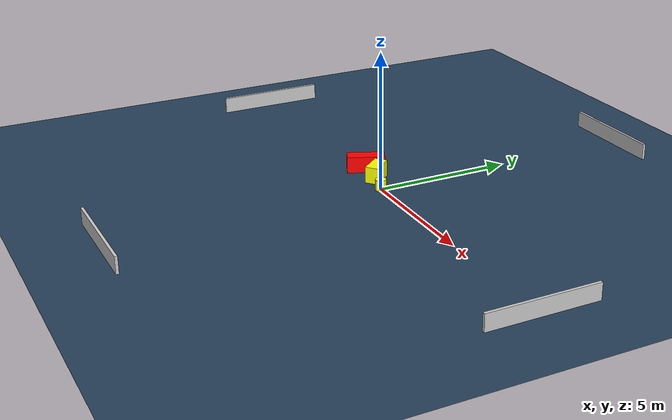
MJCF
<?xml version="1.0" ?>
<mujoco model="generated_environment">
  <option timestep="0.01" integrator="RK4" cone="elliptic"/>
  <default>
    <geom density="1"/>
  </default>
  <asset>
    <texture builtin="gradient" height="3072" name="skybox" rgb1="0.3 0.5 0.7" rgb2="0 0 0" type="skybox" width="512"/>
    <texture builtin="checker" height="300" name="groundplane" rgb1="0.2 0.3 0.4" rgb2="0.1 0.2 0.3" type="2d" width="300"/>
    <material name="groundplane" reflectance="0.2" texrepeat="5 5" texture="groundplane"/>
  </asset>
  <worldbody>
    <light dir="0 0 -1" directional="true" pos="0 0 1.5"/>
    <geom condim="3" friction="0.5 0.005 0.001" material="groundplane" name="floor" pos="0 0 0" size="0 0 0.05" type="plane"/>
    <body name="walls">
      <geom name="wall_1" condim="4" pos="-10.0 0.0 0.3" rgba="0.800000011920929 0.800000011920929 0.800000011920929 1.0" size="0.05 2.0 0.3" type="box"/>
      <geom name="wall_2" condim="4" pos="10.0 0.0 0.3" rgba="0.800000011920929 0.800000011920929 0.800000011920929 1.0" size="0.05 2.0 0.3" type="box"/>
      <geom name="wall_3" condim="4" pos="0.0 -10.0 0.3" rgba="0.800000011920929 0.800000011920929 0.800000011920929 1.0" size="2.0 0.05 0.3" type="box"/>
      <geom name="wall_4" condim="4" pos="0.0 10.0 0.3" rgba="0.800000011920929 0.800000011920929 0.800000011920929 1.0" size="2.0 0.05 0.3" type="box"/>
    </body>
    <body name="robot">
      <joint name="joint_x" type="slide" pos="0 0 0" axis="1 0 0"/>
      <joint name="joint_y" type="slide" pos="0 0 0" axis="0 1 0"/>
      <geom name="robot" type="cylinder" pos="0.0 0.0 0.2" size="0.2 0.2 0.0" mass="5.0" friction="1.0 0.005 0.0001" condim="4" rgba="1.0 1.0 0.0 1.0"/>
    </body>
    <body name="obstacle_1_movable">
      <geom name="obstacle_1_movable" condim="4" pos="-0.9044669548125945 0.2943700658925973 0.3" euler="0 0 39.68836220395092" friction="0.0 0.005 0.001" rgba="1.0 1.0 0.0 1.0" size="0.23432092669448332 0.4514983495486543 0.3" type="box" mass="0.1"/>
      <joint type="free"/>
    </body>
    <body name="obstacle_2_static">
      <geom name="obstacle_2_static" condim="4" pos="-1.8412052943681858 0.3404873664722185 0.3" euler="0 0 66.35946930751965" friction="0.0 0.005 0.001" rgba="1.0 0.0 0.0 1.0" size="0.6822313049136441 0.25841748461284997 0.3" type="box"/>
    </body>
  </worldbody>
  <actuator>
    <motor name="actuator_x" joint="joint_x" gear="1" ctrlrange="-1 1"/>
    <motor name="actuator_y" joint="joint_y" gear="1" ctrlrange="-1 1"/>
  </actuator>
</mujoco>
